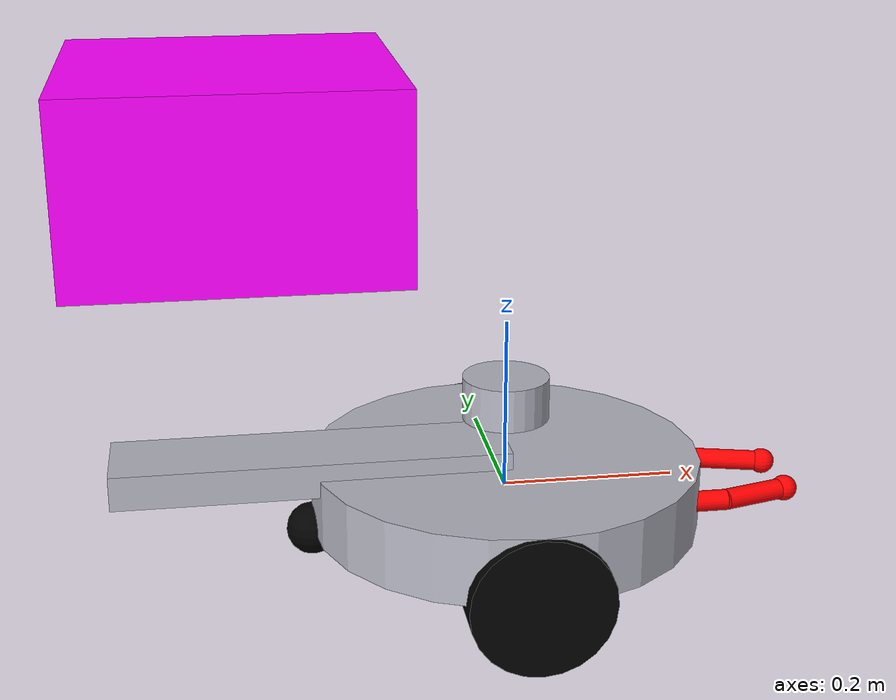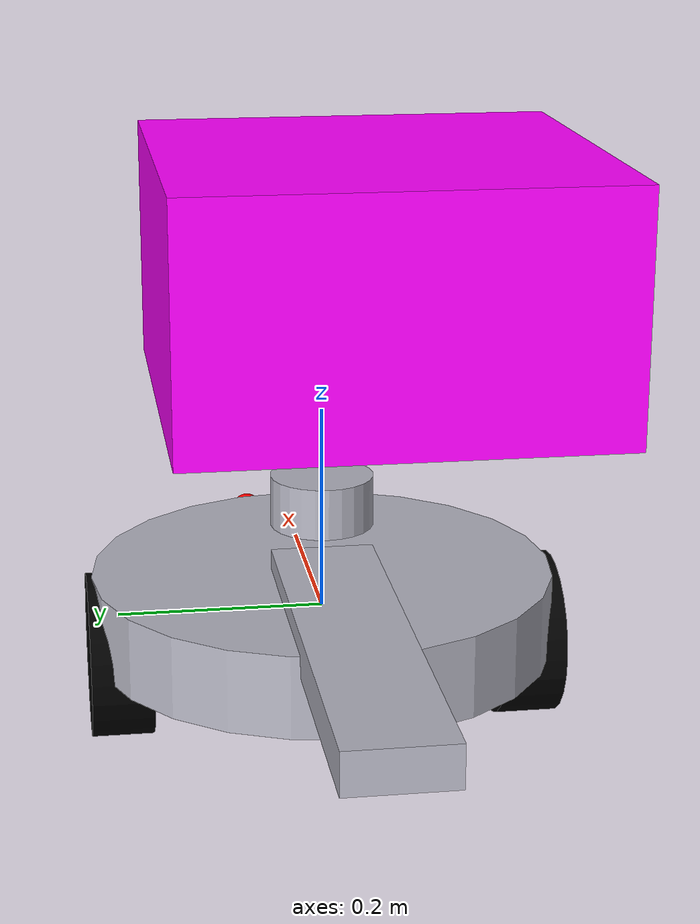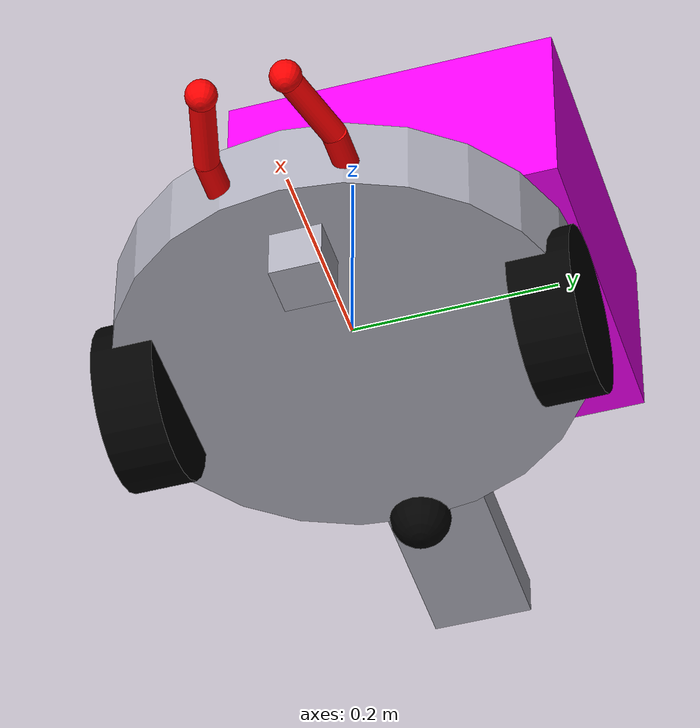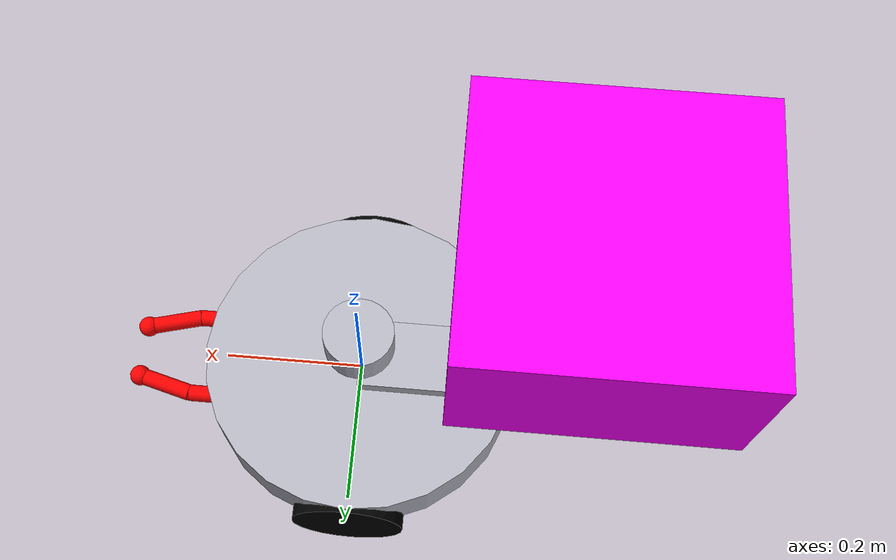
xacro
<?xml version="1.0"?>
<robot xmlns:xacro="http://www.ros.org/wiki/xacro" name="gpu_slam_bot">
  <!-- Robot Parameters -->
  <xacro:property name="base_radius" value="0.225"/>
  <xacro:property name="base_height" value="0.08"/>
  <xacro:property name="wheel_radius" value="0.08"/>
  <xacro:property name="wheel_width" value="0.06"/>
  <xacro:property name="wheel_separation" value="0.40"/>
  <xacro:property name="caster_radius" value="0.03"/>
  <xacro:property name="pusher_depth" value="0.05"/>
  <xacro:property name="pusher_width" value="0.20"/>
  <xacro:property name="pusher_height" value="0.06"/>
  <xacro:property name="arm_length" value="0.10"/> <!-- Reduced from 0.12 -->
  <xacro:property name="tip_length" value="0.08"/> <!-- Reduced from 0.12 -->
  <xacro:property name="arm_radius" value="0.012"/> <!-- Reduced from 0.015 -->
  <xacro:property name="sphere_radius" value="0.015"/> <!-- Reduced from 0.02 -->
  <xacro:property name="arm_mass" value="0.05"/> <!-- Reduced from 0.07 -->
  <xacro:property name="tip_mass" value="0.05"/> <!-- Reduced from 0.07 -->
  <xacro:property name="sphere_mass" value="0.015"/> <!-- Reduced from 0.02 -->
  <xacro:property name="gripper_arm_separation" value="0.12"/> <!-- Reduced from 0.15 -->
  <xacro:property name="curve_angle" value="0.262"/> <!-- Reduced from 0.349 (15 degrees) -->

  <!-- Materials -->
  <material name="metallic_gray"><color rgba="0.7 0.7 0.75 1"/></material>
  <material name="wheel_black"><color rgba="0 0 0 1"/></material>
  <material name="stripe_green"><color rgba="0 1 0 1"/></material>
  <material name="pusher_red"><color rgba="1 0 0 1"/></material>

  <!-- Base link -->
  <link name="base_link">
    <visual>
      <origin xyz="0 0 0" rpy="0 0 0"/>
      <geometry>
        <cylinder length="${base_height}" radius="${base_radius}"/>
      </geometry>
      <material name="metallic_gray"/>
    </visual>
    <collision>
      <origin xyz="0 0 0" rpy="0 0 0"/>
      <geometry>
        <cylinder length="${base_height}" radius="${base_radius}"/>
      </geometry>
    </collision>
    <inertial>
      <origin xyz="0 0 0"/>
      <mass value="3.0"/>
      <inertia ixx="${(1/12)*3.0*(3*base_radius*base_radius + base_height*base_height)}"
               iyy="${(1/12)*3.0*(3*base_radius*base_radius + base_height*base_height)}"
               izz="${0.5*3.0*base_radius*base_radius}"
               ixy="0" ixz="0" iyz="0"/>
    </inertial>
  </link>

  <!-- Wheels -->
  <link name="wheel_left">
    <visual>
      <origin xyz="0 0 0" rpy="1.5708 0 0"/>
      <geometry>
        <cylinder length="${wheel_width}" radius="${wheel_radius}"/>
      </geometry>
      <material name="wheel_black"/>
    </visual>
    <collision>
      <origin xyz="0 0 0" rpy="1.5708 0 0"/>
      <geometry>
        <cylinder length="${wheel_width}" radius="${wheel_radius}"/>
      </geometry>
    </collision>
    <inertial>
      <origin xyz="0 0 0"/>
      <mass value="1.5"/>
      <inertia ixx="${(1/12)*1.5*(3*wheel_radius*wheel_radius + wheel_width*wheel_width)}"
               iyy="${0.5*1.5*wheel_radius*wheel_radius}"
               izz="${(1/12)*1.5*(3*wheel_radius*wheel_radius + wheel_width*wheel_width)}"
               ixy="0" ixz="0" iyz="0"/>
    </inertial>
  </link>

  <link name="wheel_right">
    <visual>
      <origin xyz="0 0 0" rpy="1.5708 0 0"/>
      <geometry>
        <cylinder length="${wheel_width}" radius="${wheel_radius}"/>
      </geometry>
      <material name="wheel_black"/>
    </visual>
    <collision>
      <origin xyz="0 0 0" rpy="1.5708 0 0"/>
      <geometry>
        <cylinder length="${wheel_width}" radius="${wheel_radius}"/>
      </geometry>
    </collision>
    <inertial>
      <origin xyz="0 0 0"/>
      <mass value="1.5"/>
      <inertia ixx="${(1/12)*1.5*(3*wheel_radius*wheel_radius + wheel_width*wheel_width)}"
               iyy="${0.5*1.5*wheel_radius*wheel_radius}"
               izz="${(1/12)*1.5*(3*wheel_radius*wheel_radius + wheel_width*wheel_width)}"
               ixy="0" ixz="0" iyz="0"/>
    </inertial>
  </link>

  <joint name="wheel_left_joint" type="continuous">
    <parent link="base_link"/>
    <child link="wheel_left"/>
    <origin xyz="0 ${wheel_separation/2} ${-base_height/2}" rpy="0 0 0"/>
    <axis xyz="0 1 0"/>
    <dynamics damping="0.2" friction="0.0"/>
  </joint>

  <joint name="wheel_right_joint" type="continuous">
    <parent link="base_link"/>
    <child link="wheel_right"/>
    <origin xyz="0 ${-wheel_separation/2} ${-base_height/2}" rpy="0 0 0"/>
    <axis xyz="0 1 0"/>
    <dynamics damping="0.2" friction="0.0"/>
  </joint>

  <!-- Lifter link -->
  <link name="lifter_link">
    <visual>
      <geometry>
        <box size="0.05 0.05 0.1"/>
      </geometry>
      <material name="metallic_gray"/>
    </visual>
    <collision>
      <geometry>
        <box size="0.05 0.05 0.1"/>
      </geometry>
      <surface>
        <friction>
          <ode>
            <mu>1.5</mu>
            <mu2>1.5</mu2>
          </ode>
        </friction>
        <contact>
          <ode>
            <kp>1000000.0</kp>
            <kd>100.0</kd>
          </ode>
        </contact>
      </surface>
    </collision>
    <inertial>
      <origin xyz="0 0 0"/>
      <mass value="0.1"/>
      <inertia ixx="${(1/12)*0.1*(0.05*0.05 + 0.1*0.1)}"
               iyy="${(1/12)*0.1*(0.05*0.05 + 0.1*0.1)}"
               izz="${(1/12)*0.1*(0.05*0.05 + 0.05*0.05)}"
               ixy="0" ixz="0" iyz="0"/>
    </inertial>
  </link>

  <joint name="front_lifter_joint" type="prismatic">
    <parent link="base_link"/>
    <child link="lifter_link"/>
    <origin xyz="0.15 0 ${-base_height/2}" rpy="0 0 0"/>
    <axis xyz="0 0 1"/>
    <limit effort="15" velocity="0.2" lower="0.0" upper="0.4"/>
    <dynamics damping="0.3" friction="0.1"/>
  </joint>

  <!-- Left gripper arm -->
  <link name="left_arm_link">
    <visual>
      <origin xyz="${arm_length/2} 0 0" rpy="0 1.5708 0"/>
      <geometry><cylinder length="${arm_length}" radius="${arm_radius}"/></geometry>
      <material name="pusher_red"/>
    </visual>
    <collision>
      <origin xyz="${arm_length/2} 0 0" rpy="0 1.5708 0"/>
      <geometry><cylinder length="${arm_length}" radius="${arm_radius}"/></geometry>
      <surface>
        <friction>
          <ode>
            <mu>1.5</mu>
            <mu2>1.5</mu2>
          </ode>
        </friction>
        <contact>
          <ode>
            <kp>1000000.0</kp>
            <kd>100.0</kd>
          </ode>
        </contact>
      </surface>
    </collision>
    <inertial>
      <origin xyz="0 0 0"/>
      <mass value="${arm_mass}"/>
      <inertia ixx="${0.5 * arm_mass * arm_radius * arm_radius}"
               iyy="${(1/4)*arm_mass*arm_radius*arm_radius + (1/12)*arm_mass*arm_length*arm_length}"
               izz="${(1/4)*arm_mass*arm_radius*arm_radius + (1/12)*arm_mass*arm_length*arm_length}"
               ixy="0" ixz="0" iyz="0"/>
    </inertial>
  </link>

  <joint name="left_gripper_joint" type="revolute">
    <parent link="lifter_link"/>
    <child link="left_arm_link"/>
    <origin xyz="0 ${gripper_arm_separation/2} 0.03" rpy="0 0 0"/>
    <axis xyz="0 0 1"/>
    <!-- Tightened limits to prevent gripper crossing -->
    <limit effort="30" velocity="2.0" lower="-0.5" upper="0.5"/>
    <dynamics damping="0.3" friction="0.05"/>
  </joint>

  <!-- Left tip -->
  <link name="left_tip_link">
    <visual>
      <origin xyz="${tip_length/2} 0 0" rpy="0 1.5708 0"/>
      <geometry><cylinder length="${tip_length}" radius="${arm_radius}"/></geometry>
      <material name="pusher_red"/>
    </visual>
    <collision>
      <origin xyz="${tip_length/2} 0 0" rpy="0 1.5708 0"/>
      <geometry><cylinder length="${tip_length}" radius="${arm_radius}"/></geometry>
      <surface>
        <friction>
          <ode>
            <mu>1.5</mu>
            <mu2>1.5</mu2>
          </ode>
        </friction>
        <contact>
          <ode>
            <kp>1000000.0</kp>
            <kd>100.0</kd>
          </ode>
        </contact>
      </surface>
    </collision>
    <inertial>
      <origin xyz="0 0 0"/>
      <mass value="${tip_mass}"/>
      <inertia ixx="${0.5 * tip_mass * arm_radius * arm_radius}"
               iyy="${(1/4)*tip_mass*arm_radius*arm_radius + (1/12)*tip_mass*tip_length*tip_length}"
               izz="${(1/4)*tip_mass*arm_radius*arm_radius + (1/12)*tip_mass*tip_length*tip_length}"
               ixy="0" ixz="0" iyz="0"/>
    </inertial>
  </link>

  <joint name="left_tip_joint" type="fixed">
    <parent link="left_arm_link"/>
    <child link="left_tip_link"/>
    <origin xyz="${arm_length} 0 0" rpy="0 0 -${curve_angle}"/>
  </joint>

  <!-- Left tip sphere -->
  <link name="left_sphere_link">
    <visual>
      <origin xyz="0 0 0" rpy="0 0 0"/>
      <geometry><sphere radius="${sphere_radius}"/></geometry>
      <material name="pusher_red"/>
    </visual>
    <collision name="left_sphere_link_collision">
      <origin xyz="0 0 0" rpy="0 0 0"/>
      <geometry><sphere radius="${sphere_radius}"/></geometry>
      <surface>
        <friction>
          <ode>
            <mu>1.5</mu>
            <mu2>1.5</mu2>
          </ode>
        </friction>
        <contact>
          <ode>
            <kp>1000000.0</kp>
            <kd>100.0</kd>
          </ode>
        </contact>
      </surface>
    </collision>
    <inertial>
      <origin xyz="0 0 0"/>
      <mass value="${sphere_mass}"/>
      <inertia ixx="${(2/5)*sphere_mass*sphere_radius*sphere_radius}"
               iyy="${(2/5)*sphere_mass*sphere_radius*sphere_radius}"
               izz="${(2/5)*sphere_mass*sphere_radius*sphere_radius}"
               ixy="0" ixz="0" iyz="0"/>
    </inertial>
  </link>

  <joint name="left_sphere_joint" type="fixed">
    <parent link="left_tip_link"/>
    <child link="left_sphere_link"/>
    <origin xyz="${tip_length} 0 0" rpy="0 0 0"/>
  </joint>

  <!-- Right gripper arm -->
  <link name="right_arm_link">
    <visual>
      <origin xyz="${arm_length/2} 0 0" rpy="0 1.5708 0"/>
      <geometry><cylinder length="${arm_length}" radius="${arm_radius}"/></geometry>
      <material name="pusher_red"/>
    </visual>
    <collision>
      <origin xyz="${arm_length/2} 0 0" rpy="0 1.5708 0"/>
      <geometry><cylinder length="${arm_length}" radius="${arm_radius}"/></geometry>
      <surface>
        <friction>
          <ode>
            <mu>1.5</mu>
            <mu2>1.5</mu2>
          </ode>
        </friction>
        <contact>
          <ode>
            <kp>1000000.0</kp>
            <kd>100.0</kd>
          </ode>
        </contact>
      </surface>
    </collision>
    <inertial>
      <origin xyz="0 0 0"/>
      <mass value="${arm_mass}"/>
      <inertia ixx="${0.5 * arm_mass * arm_radius * arm_radius}"
               iyy="${(1/4)*arm_mass*arm_radius*arm_radius + (1/12)*arm_mass*arm_length*arm_length}"
               izz="${(1/4)*arm_mass*arm_radius*arm_radius + (1/12)*arm_mass*arm_length*arm_length}"
               ixy="0" ixz="0" iyz="0"/>
    </inertial>
  </link>

  <joint name="right_gripper_joint" type="revolute">
    <parent link="lifter_link"/>
    <child link="right_arm_link"/>
    <origin xyz="0 ${-gripper_arm_separation/2} 0.03" rpy="0 0 0"/>
    <axis xyz="0 0 1"/>
    <!-- Tightened limits to prevent gripper crossing -->
    <limit effort="30" velocity="2.0" lower="-0.5" upper="0.5"/>
    <dynamics damping="0.3" friction="0.05"/>
    <mimic joint="left_gripper_joint" multiplier="-1" offset="0"/>
  </joint>

  <!-- Right tip -->
  <link name="right_tip_link">
    <visual>
      <origin xyz="${tip_length/2} 0 0" rpy="0 1.5708 0"/>
      <geometry><cylinder length="${tip_length}" radius="${arm_radius}"/></geometry>
      <material name="pusher_red"/>
    </visual>
    <collision>
      <origin xyz="${tip_length/2} 0 0" rpy="0 1.5708 0"/>
      <geometry><cylinder length="${tip_length}" radius="${arm_radius}"/></geometry>
      <surface>
        <friction>
          <ode>
            <mu>1.5</mu>
            <mu2>1.5</mu2>
          </ode>
        </friction>
        <contact>
          <ode>
            <kp>1000000.0</kp>
            <kd>100.0</kd>
          </ode>
        </contact>
      </surface>
    </collision>
    <inertial>
      <origin xyz="0 0 0"/>
      <mass value="${tip_mass}"/>
      <inertia ixx="${0.5 * tip_mass * arm_radius * arm_radius}"
               iyy="${(1/4)*tip_mass*arm_radius*arm_radius + (1/12)*tip_mass*tip_length*tip_length}"
               izz="${(1/4)*tip_mass*arm_radius*arm_radius + (1/12)*tip_mass*tip_length*tip_length}"
               ixy="0" ixz="0" iyz="0"/>
    </inertial>
  </link>

  <joint name="right_tip_joint" type="fixed">
    <parent link="right_arm_link"/>
    <child link="right_tip_link"/>
    <origin xyz="${arm_length} 0 0" rpy="0 0 ${curve_angle}"/>
  </joint>

  <!-- Right tip sphere -->
  <link name="right_sphere_link">
    <visual>
      <origin xyz="0 0 0" rpy="0 0 0"/>
      <geometry><sphere radius="${sphere_radius}"/></geometry>
      <material name="pusher_red"/>
    </visual>
    <collision name="right_sphere_link_collision">
      <origin xyz="0 0 0" rpy="0 0 0"/>
      <geometry><sphere radius="${sphere_radius}"/></geometry>
      <surface>
        <friction>
          <ode>
            <mu>1.5</mu>
            <mu2>1.5</mu2>
          </ode>
        </friction>
        <contact>
          <ode>
            <kp>1000000.0</kp>
            <kd>100.0</kd>
          </ode>
        </contact>
      </surface>
    </collision>
    <inertial>
      <origin xyz="0 0 0"/>
      <mass value="${sphere_mass}"/>
      <inertia ixx="${(2/5)*sphere_mass*sphere_radius*sphere_radius}"
               iyy="${(2/5)*sphere_mass*sphere_radius*sphere_radius}"
               izz="${(2/5)*sphere_mass*sphere_radius*sphere_radius}"
               ixy="0" ixz="0" iyz="0"/>
    </inertial>
  </link>

  <joint name="right_sphere_joint" type="fixed">
    <parent link="right_tip_link"/>
    <child link="right_sphere_link"/>
    <origin xyz="${tip_length} 0 0" rpy="0 0 0"/>
  </joint>

  <!-- Caster wheel -->
  <link name="caster_link">
    <visual>
      <origin xyz="0 0 0" rpy="0 0 0"/>
      <geometry>
        <sphere radius="${caster_radius}"/>
      </geometry>
      <material name="wheel_black"/>
    </visual>
    <collision>
      <origin xyz="0 0 0" rpy="0 0 0"/>
      <geometry>
        <sphere radius="${caster_radius}"/>
      </geometry>
    </collision>
    <inertial>
      <origin xyz="0 0 0"/>
      <mass value="0.1"/>
      <inertia ixx="${(2/5)*0.1*caster_radius*caster_radius}"
               iyy="${(2/5)*0.1*caster_radius*caster_radius}"
               izz="${(2/5)*0.1*caster_radius*caster_radius}"
               ixy="0" ixz="0" iyz="0"/>
    </inertial>
  </link>

  <joint name="caster_joint" type="continuous">
    <parent link="base_link"/>
    <child link="caster_link"/>
    <origin xyz="${-base_radius} 0 ${-base_height/2}" rpy="0 0 0"/>
    <axis xyz="0 0 1"/>
    <dynamics damping="0.1" friction="0.1"/>
  </joint>

  <!-- Back platform -->
  <link name="back_platform_link">
    <visual>
      <origin xyz="0 0 0" rpy="0 0 0"/>
      <geometry>
        <box size="${base_radius*2} 0.1 ${base_height/2}"/>
      </geometry>
      <material name="metallic_gray"/>
    </visual>
    <collision>
      <origin xyz="0 0 0" rpy="0 0 0"/>
      <geometry>
        <box size="${base_radius*2} 0.1 ${base_height/2}"/>
      </geometry>
    </collision>
    <inertial>
      <origin xyz="0 0 0"/>
      <mass value="0.5"/>
      <inertia ixx="0.001" ixy="0" ixz="0" iyy="0.001" iyz="0" izz="0.001"/>
    </inertial>
  </link>

  <joint name="back_platform_joint" type="fixed">
    <parent link="base_link"/>
    <child link="back_platform_link"/>
    <origin xyz="${-base_radius} 0 ${base_height/2}" rpy="0 0 0"/>
  </joint>

  <!-- LIDAR -->
  <link name="lidar_link">
    <visual>
      <origin xyz="0 0 0" rpy="0 0 0"/>
      <geometry>
        <cylinder length="0.05" radius="0.05"/>
      </geometry>
      <material name="metallic_gray"/>
    </visual>
    <collision>
      <origin xyz="0 0 0" rpy="0 0 0"/>
      <geometry>
        <cylinder length="0.05" radius="0.05"/>
      </geometry>
    </collision>
    <inertial>
      <origin xyz="0 0 0"/>
      <mass value="0.2"/>
      <inertia ixx="0.001" ixy="0" ixz="0" iyy="0.001" iyz="0" izz="0.001"/>
    </inertial>
  </link>

  <joint name="lidar_joint" type="fixed">
    <parent link="base_link"/>
    <child link="lidar_link"/>
    <origin xyz="0 0 ${base_height + 0.03}" rpy="0 0 0"/>
  </joint>

  <!-- Gazebo Plugins -->
  <gazebo>
    <plugin name="gazebo_ros_clock" filename="libgazebo_ros_clock.so"/>
  </gazebo>

  <gazebo>
    <plugin name="differential_drive_controller" filename="libgazebo_ros_diff_drive.so">
      <ros>
        <namespace>/</namespace>
      </ros>
      <update_rate>30</update_rate>
      <left_joint>wheel_left_joint</left_joint>
      <right_joint>wheel_right_joint</right_joint>
      <wheel_separation>${wheel_separation}</wheel_separation>
      <wheel_diameter>${2*wheel_radius}</wheel_diameter>
      <max_wheel_torque>30</max_wheel_torque>
      <max_wheel_acceleration>1.0</max_wheel_acceleration>
      <command_topic>cmd_vel/gripper</command_topic>
      <publish_odom>true</publish_odom>
      <publish_odom_tf>true</publish_odom_tf>
      <odometry_topic>odom</odometry_topic>
      <odometry_frame>odom</odometry_frame>
      <robot_base_frame>base_link</robot_base_frame>
    </plugin>
  </gazebo>

  <gazebo>
    <plugin name="gazebo_ros_joint_state_publisher" filename="libgazebo_ros_joint_state_publisher.so">
      <ros>
        <namespace>/</namespace>
      </ros>
      <update_rate>50</update_rate>
      <joint_name>wheel_left_joint</joint_name>
      <joint_name>wheel_right_joint</joint_name>
      <joint_name>front_lifter_joint</joint_name>
      <joint_name>left_gripper_joint</joint_name>
      <joint_name>right_gripper_joint</joint_name>
      <joint_name>caster_joint</joint_name>
    </plugin>
  </gazebo>

  <gazebo reference="lidar_link">
    <sensor type="ray" name="laser_scanner">
      <pose>0 0 0 0 0 0</pose>
      <visualize>false</visualize>
      <update_rate>40</update_rate>
      <ray>
        <scan>
          <horizontal>
            <samples>720</samples>
            <resolution>1</resolution>
            <min_angle>-1.570796</min_angle>
            <max_angle>1.570796</max_angle>
          </horizontal>
        </scan>
        <range>
          <min>0.10</min>
          <max>30.0</max>
          <resolution>0.01</resolution>
        </range>
        <noise>
          <type>gaussian</type>
          <mean>0.0</mean>
          <stddev>0.01</stddev>
        </noise>
      </ray>
      <plugin name="gazebo_ros_laser" filename="libgazebo_ros_ray_sensor.so">
        <ros>
          <namespace>/</namespace>
        </ros>
        <output_type>sensor_msgs/LaserScan</output_type>
        <topicName>scan</topicName>
        <frameName>lidar_link</frameName>
      </plugin>
    </sensor>
  </gazebo>

  <gazebo>
    <plugin name="gazebo_ros2_control" filename="libgazebo_ros2_control.so">
      <parameters>$(find gpu_slam_bot)/config/controllers.yaml</parameters>
    </plugin>
  </gazebo>

  <!-- Gazebo Material and Physics Properties -->
  <gazebo reference="base_link">
    <material>Gazebo/Grey</material>
    <mu1>0.8</mu1>
    <mu2>0.8</mu2>
    <surface>
      <friction>
        <ode>
          <mu>0.8</mu>
          <mu2>0.8</mu2>
        </ode>
      </friction>
      <contact>
        <ode>
          <kp>1000000.0</kp>
          <kd>100.0</kd>
        </ode>
      </contact>
    </surface>
  </gazebo>

  <gazebo reference="wheel_left">
    <material>Gazebo/Black</material>
    <mu1>1.0</mu1>
    <mu2>1.0</mu2>
    <surface>
      <friction>
        <ode>
          <mu>1.0</mu>
          <mu2>1.0</mu2>
        </ode>
      </friction>
      <contact>
        <ode>
          <kp>1000000.0</kp>
          <kd>100.0</kd>
        </ode>
      </contact>
    </surface>
  </gazebo>

  <gazebo reference="wheel_right">
    <material>Gazebo/Black</material>
    <mu1>1.0</mu1>
    <mu2>1.0</mu2>
    <surface>
      <friction>
        <ode>
          <mu>1.0</mu>
          <mu2>1.0</mu2>
        </ode>
      </friction>
      <contact>
        <ode>
          <kp>1000000.0</kp>
          <kd>100.0</kd>
        </ode>
      </contact>
    </surface>
  </gazebo>

  <gazebo reference="caster_link">
    <material>Gazebo/Black</material>
    <mu1>0.0</mu1>
    <mu2>0.0</mu2>
  </gazebo>

  <gazebo reference="lifter_link">
    <material>Gazebo/Grey</material>
    <surface>
      <friction>
        <ode>
          <mu>1.5</mu>
          <mu2>1.5</mu2>
        </ode>
      </friction>
      <contact>
        <ode>
          <kp>1000000.0</kp>
          <kd>100.0</kd>
        </ode>
      </contact>
    </surface>
  </gazebo>

  <gazebo reference="left_arm_link">
    <material>Gazebo/Red</material>
    <surface>
      <friction>
        <ode>
          <mu>1.5</mu>
          <mu2>1.5</mu2>
        </ode>
      </friction>
      <contact>
        <ode>
          <kp>1000000.0</kp>
          <kd>100.0</kd>
        </ode>
      </contact>
    </surface>
  </gazebo>

  <gazebo reference="right_arm_link">
    <material>Gazebo/Red</material>
    <surface>
      <friction>
        <ode>
          <mu>1.5</mu>
          <mu2>1.5</mu2>
        </ode>
      </friction>
      <contact>
        <ode>
          <kp>1000000.0</kp>
          <kd>100.0</kd>
        </ode>
      </contact>
    </surface>
  </gazebo>

  <gazebo reference="left_tip_link">
    <material>Gazebo/Red</material>
    <surface>
      <friction>
        <ode>
          <mu>1.5</mu>
          <mu2>1.5</mu2>
        </ode>
      </friction>
      <contact>
        <ode>
          <kp>1000000.0</kp>
          <kd>100.0</kd>
        </ode>
      </contact>
    </surface>
  </gazebo>

  <gazebo reference="right_tip_link">
    <material>Gazebo/Red</material>
    <surface>
      <friction>
        <ode>
          <mu>1.5</mu>
          <mu2>1.5</mu2>
        </ode>
      </friction>
      <contact>
        <ode>
          <kp>1000000.0</kp>
          <kd>100.0</kd>
        </ode>
      </contact>
    </surface>
  </gazebo>

  <gazebo reference="left_sphere_link">
    <material>Gazebo/Red</material>
    <surface>
      <friction>
        <ode>
          <mu>1.5</mu>
          <mu2>1.5</mu2>
        </ode>
      </friction>
      <contact>
        <ode>
          <kp>1000000.0</kp>
          <kd>100.0</kd>
        </ode>
      </contact>
    </surface>
  </gazebo>

  <gazebo reference="right_sphere_link">
    <material>Gazebo/Red</material>
    <surface>
      <friction>
        <ode>
          <mu>1.5</mu>
          <mu2>1.5</mu2>
        </ode>
      </friction>
      <contact>
        <ode>
          <kp>1000000.0</kp>
          <kd>100.0</kd>
        </ode>
      </contact>
    </surface>
  </gazebo>

  <gazebo reference="back_platform_link">
    <material>Gazebo/Grey</material>
    <surface>
      <friction>
        <ode>
          <mu>0.8</mu>
          <mu2>0.8</mu2>
        </ode>
      </friction>
      <contact>
        <ode>
          <kp>1000000.0</kp>
          <kd>100.0</kd>
        </ode>
      </contact>
    </surface>
  </gazebo>

  <!-- Transmissions -->
  <transmission name="left_gripper_trans">
    <type>transmission_interface/SimpleTransmission</type>
    <joint name="left_gripper_joint">
      <hardwareInterface>PositionJointInterface</hardwareInterface>
    </joint>
    <actuator name="left_gripper_motor">
      <hardwareInterface>PositionJointInterface</hardwareInterface>
      <mechanicalReduction>1</mechanicalReduction>
    </actuator>
  </transmission>

  <transmission name="right_gripper_trans">
    <type>transmission_interface/SimpleTransmission</type>
    <joint name="right_gripper_joint">
      <hardwareInterface>PositionJointInterface</hardwareInterface>
    </joint>
    <actuator name="right_gripper_motor">
      <hardwareInterface>PositionJointInterface</hardwareInterface>
      <mechanicalReduction>1</mechanicalReduction>
    </actuator>
  </transmission>

  <transmission name="lifter_trans">
    <type>transmission_interface/SimpleTransmission</type>
    <joint name="front_lifter_joint">
      <hardwareInterface>PositionJointInterface</hardwareInterface>
    </joint>
    <actuator name="lifter_motor">
      <hardwareInterface>PositionJointInterface</hardwareInterface>
      <mechanicalReduction>1</mechanicalReduction>
    </actuator>
  </transmission>

  <!-- Basket link: Fixed on base_link, visual only (no collision for teleported boxes) -->
  <link name="basket_link">
    <visual>
      <geometry>
        <box size="0.35 0.35 0.2" /> <!-- Larger and taller for visibility -->
      </geometry>
      <material>
        <color rgba="1 0 1 1" /> <!-- Bright magenta for high visibility -->
      </material>
      <origin xyz="-0.15 0 0.2" rpy="0 0 0" /> <!-- Higher to avoid platform overlap -->
    </visual>
    <!-- No collision to avoid issues with teleported boxes; add collision for debugging if needed -->
  </link>

  <joint name="basket_joint" type="fixed">
    <parent link="base_link"/>
    <child link="basket_link"/>
    <origin xyz="-0.15 0 0.2" rpy="0 0 0"/>
  </joint>

</robot>
